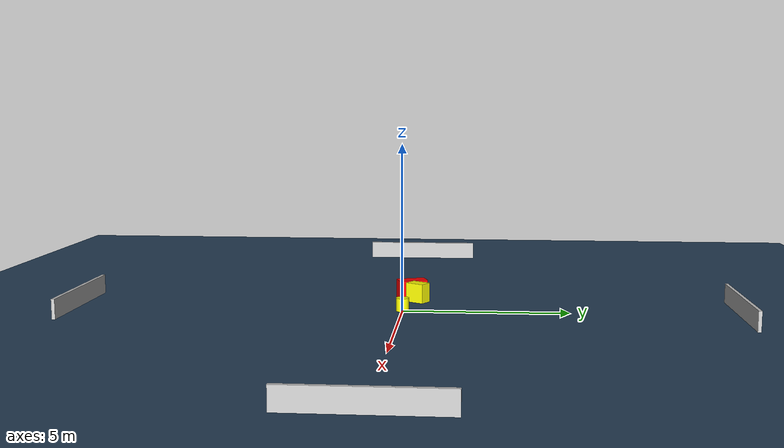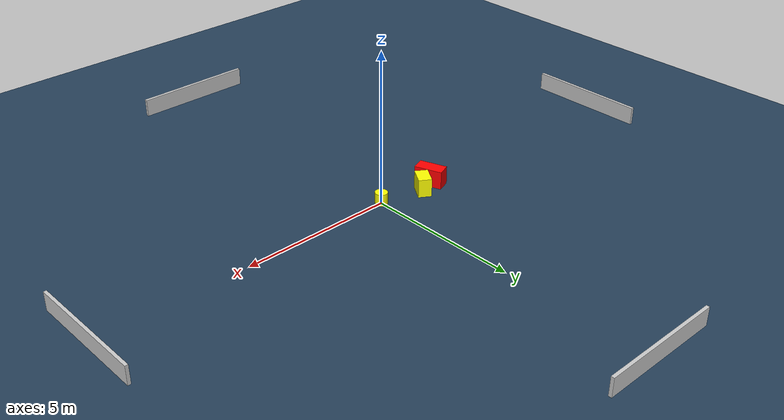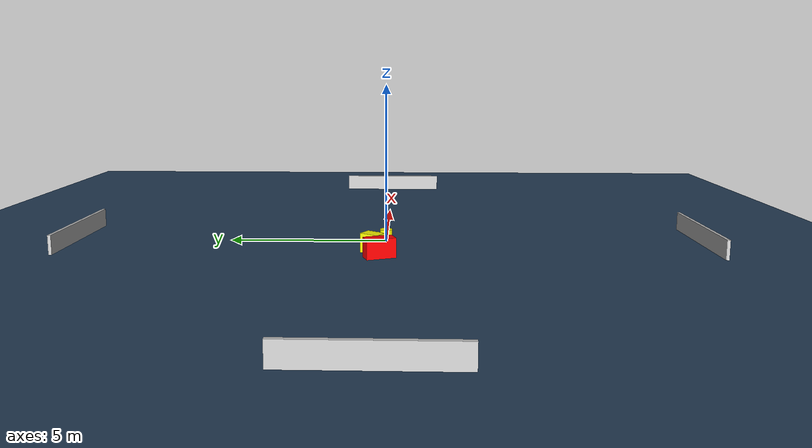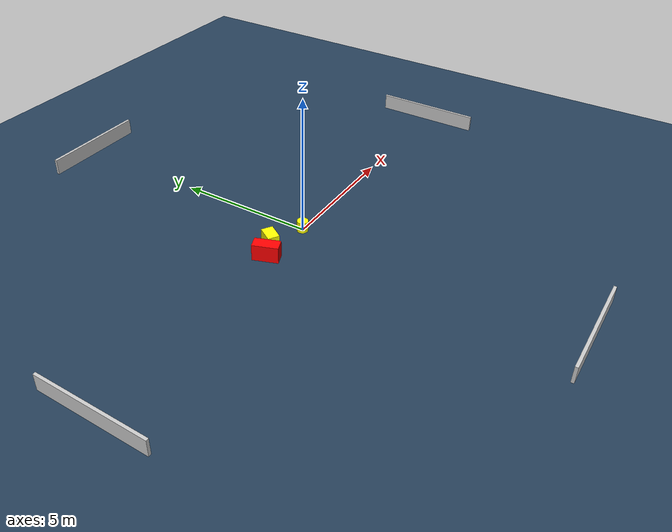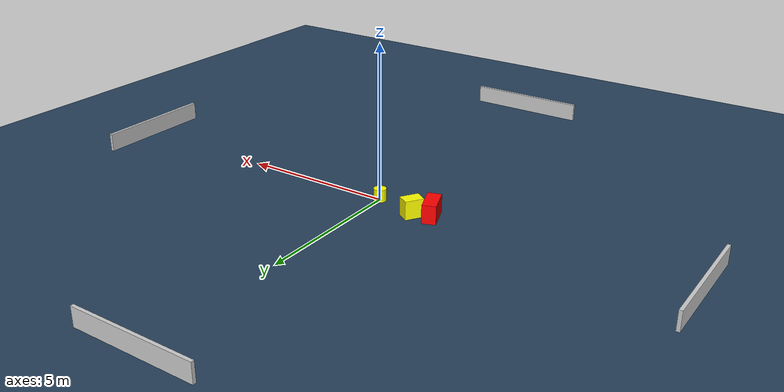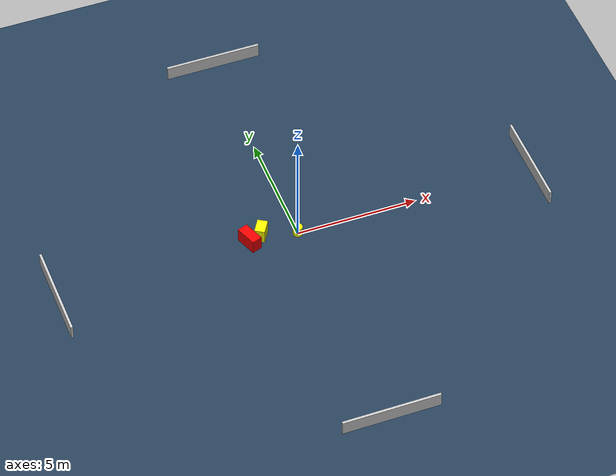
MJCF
<?xml version="1.0" ?>
<mujoco model="generated_environment">
  <option timestep="0.01" integrator="RK4" cone="elliptic"/>
  <default>
    <geom density="1"/>
  </default>
  <asset>
    <texture builtin="gradient" height="3072" name="skybox" rgb1="0.3 0.5 0.7" rgb2="0 0 0" type="skybox" width="512"/>
    <texture builtin="checker" height="300" name="groundplane" rgb1="0.2 0.3 0.4" rgb2="0.1 0.2 0.3" type="2d" width="300"/>
    <material name="groundplane" reflectance="0.2" texrepeat="5 5" texture="groundplane"/>
  </asset>
  <worldbody>
    <light dir="0 0 -1" directional="true" pos="0 0 1.5"/>
    <geom condim="3" friction="0.5 0.005 0.001" material="groundplane" name="floor" pos="0 0 0" size="0 0 0.05" type="plane"/>
    <body name="walls">
      <geom name="wall_1" condim="4" pos="-10.0 0.0 0.3" rgba="0.800000011920929 0.800000011920929 0.800000011920929 1.0" size="0.05 2.0 0.3" type="box"/>
      <geom name="wall_2" condim="4" pos="10.0 0.0 0.3" rgba="0.800000011920929 0.800000011920929 0.800000011920929 1.0" size="0.05 2.0 0.3" type="box"/>
      <geom name="wall_3" condim="4" pos="0.0 -10.0 0.3" rgba="0.800000011920929 0.800000011920929 0.800000011920929 1.0" size="2.0 0.05 0.3" type="box"/>
      <geom name="wall_4" condim="4" pos="0.0 10.0 0.3" rgba="0.800000011920929 0.800000011920929 0.800000011920929 1.0" size="2.0 0.05 0.3" type="box"/>
    </body>
    <body name="robot">
      <joint name="joint_x" type="slide" pos="0 0 0" axis="1 0 0"/>
      <joint name="joint_y" type="slide" pos="0 0 0" axis="0 1 0"/>
      <geom name="robot" type="cylinder" pos="0.0 0.0 0.2" size="0.2 0.2 0.0" mass="5.0" friction="1.0 0.005 0.0001" condim="4" rgba="1.0 1.0 0.0 1.0"/>
    </body>
    <body name="obstacle_1_movable">
      <geom name="obstacle_1_movable" condim="4" pos="-1.4066981881604175 0.3739200912398356 0.3" euler="0 0 327.7696111639866" friction="0.0 0.005 0.001" rgba="1.0 1.0 0.0 1.0" size="0.20955198305278622 0.30669039443855367 0.3" type="box" mass="0.1"/>
      <joint type="free"/>
    </body>
    <body name="obstacle_2_static">
      <geom name="obstacle_2_static" condim="4" pos="-1.9634998401006696 0.14614343429474885 0.3" euler="0 0 290.35137837009006" friction="0.0 0.005 0.001" rgba="1.0 0.0 0.0 1.0" size="0.4543067030256587 0.21885911545312772 0.3" type="box"/>
    </body>
  </worldbody>
  <actuator>
    <motor name="actuator_x" joint="joint_x" gear="1" ctrlrange="-1 1"/>
    <motor name="actuator_y" joint="joint_y" gear="1" ctrlrange="-1 1"/>
  </actuator>
</mujoco>
